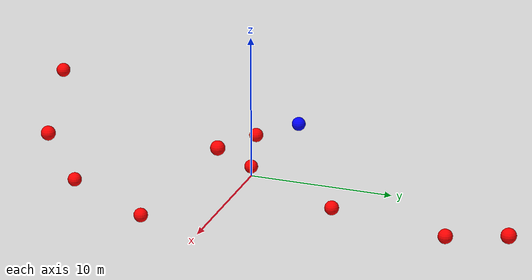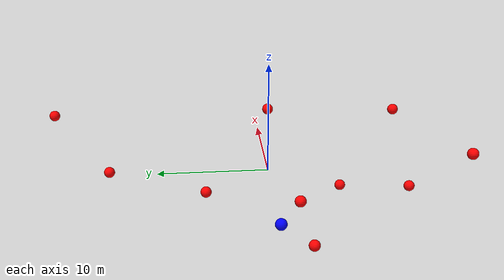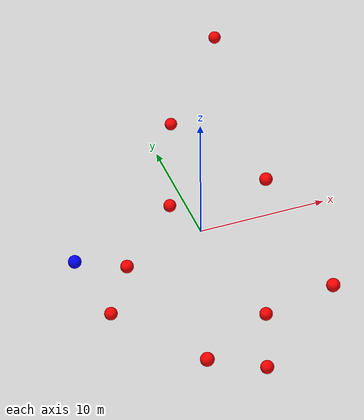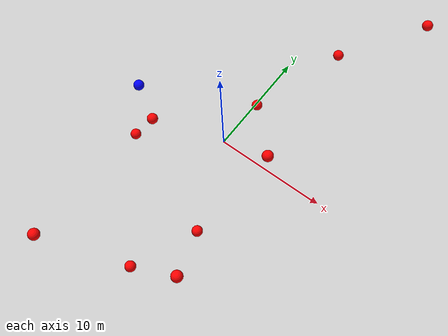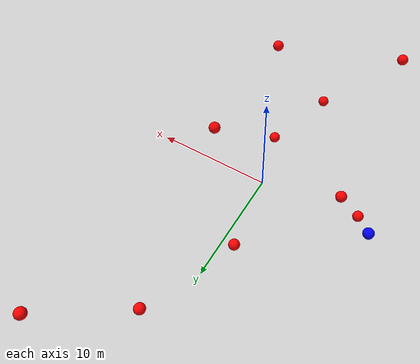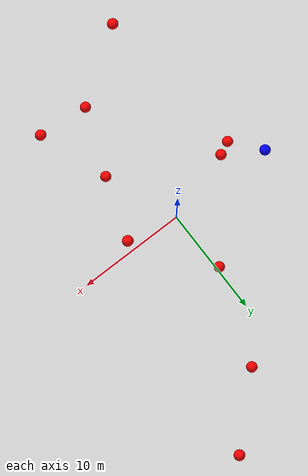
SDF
<?xml version="1.0" ?>
<sdf version="1.8">
    <world name="3d_world">
        <physics name="1ms" type="ode">
            <max_step_size>0.001</max_step_size>
            <real_time_factor>1.0</real_time_factor>
            <real_time_update_rate>1000.0</real_time_update_rate>
        </physics>
        <gravity>0 0 0</gravity>

        <plugin
            filename="gz-sim-physics-system"
            name="gz::sim::v8::systems::Physics">
        </plugin>
        <plugin
            filename="libignition-gazebo-user-commands-system.so"
            name="ignition::gazebo::systems::UserCommands">
        </plugin>
        <plugin
            filename="gz-sim-scene-broadcaster-system"
            name="gz::sim::systems::SceneBroadcaster">
        </plugin>
        <plugin
            filename="gz-sim-sensors-system"
            name="gz::sim::systems::Sensors">
            <render_engine>ogre2</render_engine>
        </plugin>

        <light type="directional" name="sun">
            <cast_shadows>true</cast_shadows>
            <pose>0 0 10 0 0 0</pose>
            <diffuse>0.8 0.8 0.8 1</diffuse>
            <specular>0.2 0.2 0.2 1</specular>
            <attenuation>
                <range>1000</range>
                <constant>0.9</constant>
                <linear>0.01</linear>
                <quadratic>0.001</quadratic>
            </attenuation>
            <direction>-0.5 0.1 -0.9</direction>
        </light>

        <!-- AGENTE -->
        <model name='agente' canonical_link='chassis'>
            <pose relative_to='world'>-10.0 0 0.0 0 0 0</pose>
            <link name='chassis'>
                <pose relative_to='__model__'>0.0 0 0.0 0 0 0</pose>
                <inertial>
                    <mass>1.14395</mass>
                    <inertia>
                        <ixx>0.095329</ixx>
                        <ixy>0</ixy>
                        <ixz>0</ixz>
                        <iyy>0.381317</iyy>
                        <iyz>0</iyz>
                        <izz>0.476646</izz>
                    </inertia>
                </inertial>
                <visual name='visual'>
                    <geometry>
                        <sphere>
                            <radius>0.5</radius>
                        </sphere>
                    </geometry>
                    <material>
                        <ambient>0.0 0.0 1.0 1</ambient>
                        <diffuse>0.0 0.0 1.0 1</diffuse>
                        <specular>0.0 0.0 1.0 1</specular>
                    </material>
                </visual>
                <collision name='collision'>
                    <geometry>
                        <sphere>
                            <radius>0.5</radius>
                        </sphere>
                    </geometry>
                </collision>
                <enable_gravity>false</enable_gravity>
            </link>

            <link name='lidar_link'>
                <pose relative_to='chassis'>0.0 0 0.1 0 0 0</pose>
                <inertial>
                    <mass>0.1</mass>
                    <inertia>
                        <ixx>0.000166667</ixx>
                        <iyy>0.000166667</iyy>
                        <izz>0.000166667</izz>
                    </inertia>
                </inertial>
                <collision name='collision'>
                    <geometry>
                        <cylinder>
                            <radius>0.05</radius>
                            <length>0.1</length>
                        </cylinder>
                    </geometry>
                </collision>
                <visual name='visual'>
                    <geometry>
                        <cylinder>
                            <radius>0.05</radius>
                            <length>0.1</length>
                        </cylinder>
                    </geometry>
                    <material>
                        <ambient>0.0 1.0 0.0 1</ambient>
                        <diffuse>0.0 1.0 0.0 1</diffuse>
                        <specular>0.0 1.0 0.0 1</specular>
                    </material>
                </visual>
                <sensor name="lidar" type="gpu_lidar">
                    <topic>scan</topic>
                    <update_rate>10</update_rate>
                    <lidar>
                        <scan>
                            <horizontal>
                                <samples>5000</samples>
                                <resolution>1</resolution>
                                <min_angle>-3.14159</min_angle>
                                <max_angle>3.14159</max_angle>
                            </horizontal>
                        </scan>
                        <range>
                            <min>0.1</min>
                            <max>10.0</max>
                            <resolution>0.01</resolution>
                        </range>
                    </lidar>
                    <visualize>true</visualize>
                    <always_on>true</always_on>
                    <update_rate>10</update_rate>
                    <pose_frame>lidar</pose_frame>
                </sensor>
                <enable_gravity>false</enable_gravity>
            </link>

            <joint name="lidar_joint" type="fixed">
                <parent>chassis</parent>
                <child>lidar_link</child>
            </joint>

            <plugin
                filename="ignition-gazebo-joint-state-publisher-system"
                name="ignition::gazebo::systems::JointStatePublisher">
            </plugin>
            <plugin
                filename="ignition-gazebo-odometry-publisher-system"
                name="ignition::gazebo::systems::OdometryPublisher">
                <dimensions>3</dimensions>
            </plugin>
            <plugin
                filename="ignition-gazebo-velocity-control-system"
                name="ignition::gazebo::systems::VelocityControl">
                <initial_linear>0.0 0 0</initial_linear>
                <initial_angular>0 0 0.0</initial_angular>
            </plugin>
            <plugin
                filename="libignition-gazebo-pose-publisher-system.so"
                name="ignition::gazebo::systems::PosePublisher">
                <topic>/agente/pose</topic>
                <frame_id>agente</frame_id>
                <update_rate>30</update_rate>
            </plugin>
        </model>

        <!-- OBSTACLE 1 -->
        <model name='obstacle_1' canonical_link='obstacle'>
            <static>false</static>
            <pose relative_to='world'>-6.59 -2.05 0.17 0 0 0</pose>
            <link name='obstacle'>
                <pose relative_to='__model__'>0.0 0 0.0 0 0 0</pose>
                <visual name='visual'>
                    <geometry>
                        <sphere>
                            <radius>0.50</radius>
                        </sphere>
                    </geometry>
                    <material>
                        <ambient>1.0 0.0 0.0 1</ambient>
                        <diffuse>1.0 0.0 0.0 1</diffuse>
                        <specular>1.0 0.0 0.0 1</specular>
                    </material>
                </visual>
                <collision name='collision'>
                    <geometry>
                        <sphere>
                            <radius>0.50</radius>
                        </sphere>
                    </geometry>
                </collision>
                <enable_gravity>false</enable_gravity>
            </link>

            <plugin
                filename="ignition-gazebo-velocity-control-system"
                name="ignition::gazebo::systems::VelocityControl">
                <initial_linear>1.36 0.69 -0.06</initial_linear>
                <initial_angular>0 0 0</initial_angular>
            </plugin>

            <plugin
                filename="ignition-gazebo-odometry-publisher-system"
                name="ignition::gazebo::systems::OdometryPublisher">
                <dimensions>3</dimensions>
            </plugin>
        </model>

        <!-- OBSTACLE 2 -->
        <model name='obstacle_2' canonical_link='obstacle'>
            <static>false</static>
            <pose relative_to='world'>5.03 -0.48 3.99 0 0 0</pose>
            <link name='obstacle'>
                <pose relative_to='__model__'>0.0 0 0.0 0 0 0</pose>
                <visual name='visual'>
                    <geometry>
                        <sphere>
                            <radius>0.50</radius>
                        </sphere>
                    </geometry>
                    <material>
                        <ambient>1.0 0.0 0.0 1</ambient>
                        <diffuse>1.0 0.0 0.0 1</diffuse>
                        <specular>1.0 0.0 0.0 1</specular>
                    </material>
                </visual>
                <collision name='collision'>
                    <geometry>
                        <sphere>
                            <radius>0.50</radius>
                        </sphere>
                    </geometry>
                </collision>
                <enable_gravity>false</enable_gravity>
            </link>

            <plugin
                filename="ignition-gazebo-velocity-control-system"
                name="ignition::gazebo::systems::VelocityControl">
                <initial_linear>-1.71 0.12 -1.03</initial_linear>
                <initial_angular>0 0 0</initial_angular>
            </plugin>

            <plugin
                filename="ignition-gazebo-odometry-publisher-system"
                name="ignition::gazebo::systems::OdometryPublisher">
                <dimensions>3</dimensions>
            </plugin>
        </model>

        <!-- OBSTACLE 3 -->
        <model name='obstacle_3' canonical_link='obstacle'>
            <static>false</static>
            <pose relative_to='world'>-0.48 5.66 -1.75 0 0 0</pose>
            <link name='obstacle'>
                <pose relative_to='__model__'>0.0 0 0.0 0 0 0</pose>
                <visual name='visual'>
                    <geometry>
                        <sphere>
                            <radius>0.50</radius>
                        </sphere>
                    </geometry>
                    <material>
                        <ambient>1.0 0.0 0.0 1</ambient>
                        <diffuse>1.0 0.0 0.0 1</diffuse>
                        <specular>1.0 0.0 0.0 1</specular>
                    </material>
                </visual>
                <collision name='collision'>
                    <geometry>
                        <sphere>
                            <radius>0.50</radius>
                        </sphere>
                    </geometry>
                </collision>
                <enable_gravity>false</enable_gravity>
            </link>

            <plugin
                filename="ignition-gazebo-velocity-control-system"
                name="ignition::gazebo::systems::VelocityControl">
                <initial_linear>-0.43 -1.74 0.54</initial_linear>
                <initial_angular>0 0 0</initial_angular>
            </plugin>

            <plugin
                filename="ignition-gazebo-odometry-publisher-system"
                name="ignition::gazebo::systems::OdometryPublisher">
                <dimensions>3</dimensions>
            </plugin>
        </model>

        <!-- OBSTACLE 4 -->
        <model name='obstacle_4' canonical_link='obstacle'>
            <static>false</static>
            <pose relative_to='world'>2.81 14.52 -1.00 0 0 0</pose>
            <link name='obstacle'>
                <pose relative_to='__model__'>0.0 0 0.0 0 0 0</pose>
                <visual name='visual'>
                    <geometry>
                        <sphere>
                            <radius>0.50</radius>
                        </sphere>
                    </geometry>
                    <material>
                        <ambient>1.0 0.0 0.0 1</ambient>
                        <diffuse>1.0 0.0 0.0 1</diffuse>
                        <specular>1.0 0.0 0.0 1</specular>
                    </material>
                </visual>
                <collision name='collision'>
                    <geometry>
                        <sphere>
                            <radius>0.50</radius>
                        </sphere>
                    </geometry>
                </collision>
                <enable_gravity>false</enable_gravity>
            </link>

            <plugin
                filename="ignition-gazebo-velocity-control-system"
                name="ignition::gazebo::systems::VelocityControl">
                <initial_linear>-0.26 -1.98 0.14</initial_linear>
                <initial_angular>0 0 0</initial_angular>
            </plugin>

            <plugin
                filename="ignition-gazebo-odometry-publisher-system"
                name="ignition::gazebo::systems::OdometryPublisher">
                <dimensions>3</dimensions>
            </plugin>
        </model>

        <!-- OBSTACLE 5 -->
        <model name='obstacle_5' canonical_link='obstacle'>
            <static>false</static>
            <pose relative_to='world'>5.32 -12.64 3.46 0 0 0</pose>
            <link name='obstacle'>
                <pose relative_to='__model__'>0.0 0 0.0 0 0 0</pose>
                <visual name='visual'>
                    <geometry>
                        <sphere>
                            <radius>0.50</radius>
                        </sphere>
                    </geometry>
                    <material>
                        <ambient>1.0 0.0 0.0 1</ambient>
                        <diffuse>1.0 0.0 0.0 1</diffuse>
                        <specular>1.0 0.0 0.0 1</specular>
                    </material>
                </visual>
                <collision name='collision'>
                    <geometry>
                        <sphere>
                            <radius>0.50</radius>
                        </sphere>
                    </geometry>
                </collision>
                <enable_gravity>false</enable_gravity>
            </link>

            <plugin
                filename="ignition-gazebo-velocity-control-system"
                name="ignition::gazebo::systems::VelocityControl">
                <initial_linear>-0.52 1.86 -0.51</initial_linear>
                <initial_angular>0 0 0</initial_angular>
            </plugin>

            <plugin
                filename="ignition-gazebo-odometry-publisher-system"
                name="ignition::gazebo::systems::OdometryPublisher">
                <dimensions>3</dimensions>
            </plugin>
        </model>

        <!-- OBSTACLE 6 -->
        <model name='obstacle_6' canonical_link='obstacle'>
            <static>false</static>
            <pose relative_to='world'>0.11 -13.32 -2.21 0 0 0</pose>
            <link name='obstacle'>
                <pose relative_to='__model__'>0.0 0 0.0 0 0 0</pose>
                <visual name='visual'>
                    <geometry>
                        <sphere>
                            <radius>0.50</radius>
                        </sphere>
                    </geometry>
                    <material>
                        <ambient>1.0 0.0 0.0 1</ambient>
                        <diffuse>1.0 0.0 0.0 1</diffuse>
                        <specular>1.0 0.0 0.0 1</specular>
                    </material>
                </visual>
                <collision name='collision'>
                    <geometry>
                        <sphere>
                            <radius>0.50</radius>
                        </sphere>
                    </geometry>
                </collision>
                <enable_gravity>false</enable_gravity>
            </link>

            <plugin
                filename="ignition-gazebo-velocity-control-system"
                name="ignition::gazebo::systems::VelocityControl">
                <initial_linear>-0.29 1.95 0.32</initial_linear>
                <initial_angular>0 0 0</initial_angular>
            </plugin>

            <plugin
                filename="ignition-gazebo-odometry-publisher-system"
                name="ignition::gazebo::systems::OdometryPublisher">
                <dimensions>3</dimensions>
            </plugin>
        </model>

        <!-- OBSTACLE 7 -->
        <model name='obstacle_7' canonical_link='obstacle'>
            <static>false</static>
            <pose relative_to='world'>-8.29 -3.07 -3.13 0 0 0</pose>
            <link name='obstacle'>
                <pose relative_to='__model__'>0.0 0 0.0 0 0 0</pose>
                <visual name='visual'>
                    <geometry>
                        <sphere>
                            <radius>0.50</radius>
                        </sphere>
                    </geometry>
                    <material>
                        <ambient>1.0 0.0 0.0 1</ambient>
                        <diffuse>1.0 0.0 0.0 1</diffuse>
                        <specular>1.0 0.0 0.0 1</specular>
                    </material>
                </visual>
                <collision name='collision'>
                    <geometry>
                        <sphere>
                            <radius>0.50</radius>
                        </sphere>
                    </geometry>
                </collision>
                <enable_gravity>false</enable_gravity>
            </link>

            <plugin
                filename="ignition-gazebo-velocity-control-system"
                name="ignition::gazebo::systems::VelocityControl">
                <initial_linear>1.82 0.58 0.60</initial_linear>
                <initial_angular>0 0 0</initial_angular>
            </plugin>

            <plugin
                filename="ignition-gazebo-odometry-publisher-system"
                name="ignition::gazebo::systems::OdometryPublisher">
                <dimensions>3</dimensions>
            </plugin>
        </model>

        <!-- OBSTACLE 8 -->
        <model name='obstacle_8' canonical_link='obstacle'>
            <static>false</static>
            <pose relative_to='world'>2.46 -7.25 -3.03 0 0 0</pose>
            <link name='obstacle'>
                <pose relative_to='__model__'>0.0 0 0.0 0 0 0</pose>
                <visual name='visual'>
                    <geometry>
                        <sphere>
                            <radius>0.50</radius>
                        </sphere>
                    </geometry>
                    <material>
                        <ambient>1.0 0.0 0.0 1</ambient>
                        <diffuse>1.0 0.0 0.0 1</diffuse>
                        <specular>1.0 0.0 0.0 1</specular>
                    </material>
                </visual>
                <collision name='collision'>
                    <geometry>
                        <sphere>
                            <radius>0.50</radius>
                        </sphere>
                    </geometry>
                </collision>
                <enable_gravity>false</enable_gravity>
            </link>

            <plugin
                filename="ignition-gazebo-velocity-control-system"
                name="ignition::gazebo::systems::VelocityControl">
                <initial_linear>0.19 1.34 0.56</initial_linear>
                <initial_angular>0 0 0</initial_angular>
            </plugin>

            <plugin
                filename="ignition-gazebo-odometry-publisher-system"
                name="ignition::gazebo::systems::OdometryPublisher">
                <dimensions>3</dimensions>
            </plugin>
        </model>

        <!-- OBSTACLE 9 -->
        <model name='obstacle_9' canonical_link='obstacle'>
            <static>false</static>
            <pose relative_to='world'>8.66 19.99 2.52 0 0 0</pose>
            <link name='obstacle'>
                <pose relative_to='__model__'>0.0 0 0.0 0 0 0</pose>
                <visual name='visual'>
                    <geometry>
                        <sphere>
                            <radius>0.50</radius>
                        </sphere>
                    </geometry>
                    <material>
                        <ambient>1.0 0.0 0.0 1</ambient>
                        <diffuse>1.0 0.0 0.0 1</diffuse>
                        <specular>1.0 0.0 0.0 1</specular>
                    </material>
                </visual>
                <collision name='collision'>
                    <geometry>
                        <sphere>
                            <radius>0.50</radius>
                        </sphere>
                    </geometry>
                </collision>
                <enable_gravity>false</enable_gravity>
            </link>

            <plugin
                filename="ignition-gazebo-velocity-control-system"
                name="ignition::gazebo::systems::VelocityControl">
                <initial_linear>-1.05 -1.69 -0.21</initial_linear>
                <initial_angular>0 0 0</initial_angular>
            </plugin>

            <plugin
                filename="ignition-gazebo-odometry-publisher-system"
                name="ignition::gazebo::systems::OdometryPublisher">
                <dimensions>3</dimensions>
            </plugin>
        </model>

        <!-- OBSTACLE 10 -->
        <model name='obstacle_10' canonical_link='obstacle'>
            <static>false</static>
            <pose relative_to='world'>-5.75 -16.71 3.58 0 0 0</pose>
            <link name='obstacle'>
                <pose relative_to='__model__'>0.0 0 0.0 0 0 0</pose>
                <visual name='visual'>
                    <geometry>
                        <sphere>
                            <radius>0.50</radius>
                        </sphere>
                    </geometry>
                    <material>
                        <ambient>1.0 0.0 0.0 1</ambient>
                        <diffuse>1.0 0.0 0.0 1</diffuse>
                        <specular>1.0 0.0 0.0 1</specular>
                    </material>
                </visual>
                <collision name='collision'>
                    <geometry>
                        <sphere>
                            <radius>0.50</radius>
                        </sphere>
                    </geometry>
                </collision>
                <enable_gravity>false</enable_gravity>
            </link>

            <plugin
                filename="ignition-gazebo-velocity-control-system"
                name="ignition::gazebo::systems::VelocityControl">
                <initial_linear>0.46 1.90 -0.41</initial_linear>
                <initial_angular>0 0 0</initial_angular>
            </plugin>

            <plugin
                filename="ignition-gazebo-odometry-publisher-system"
                name="ignition::gazebo::systems::OdometryPublisher">
                <dimensions>3</dimensions>
            </plugin>
        </model>

    </world>
</sdf>
